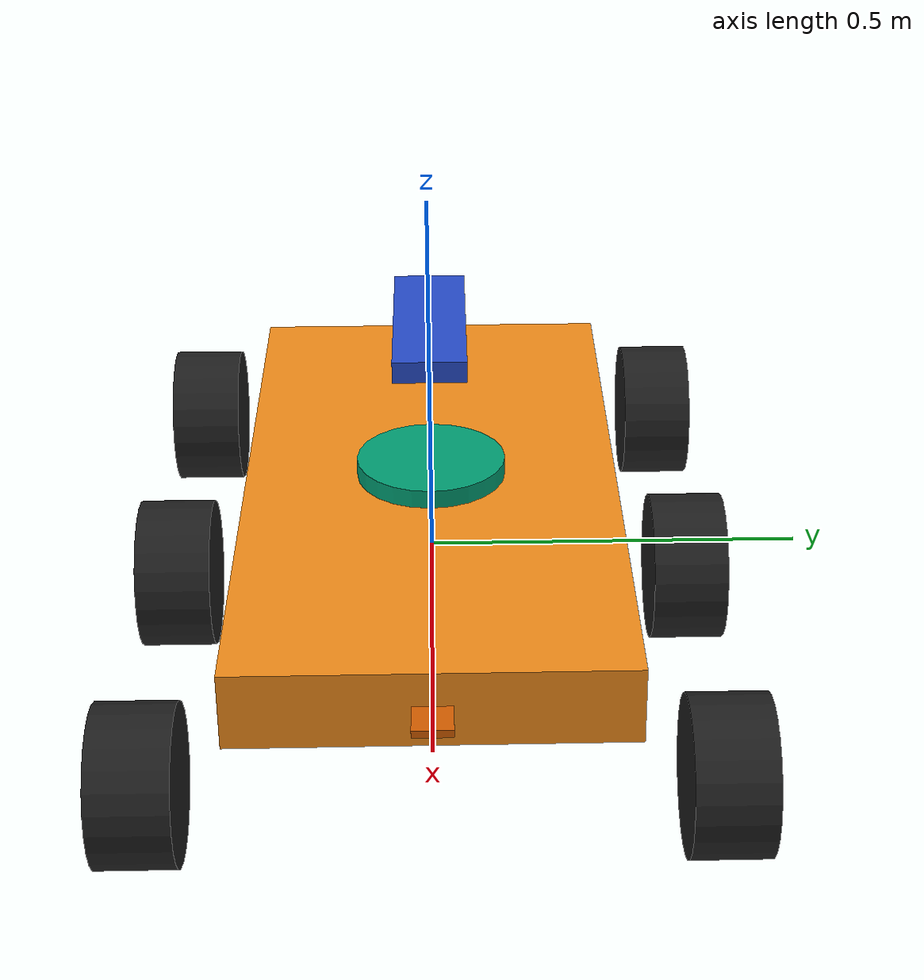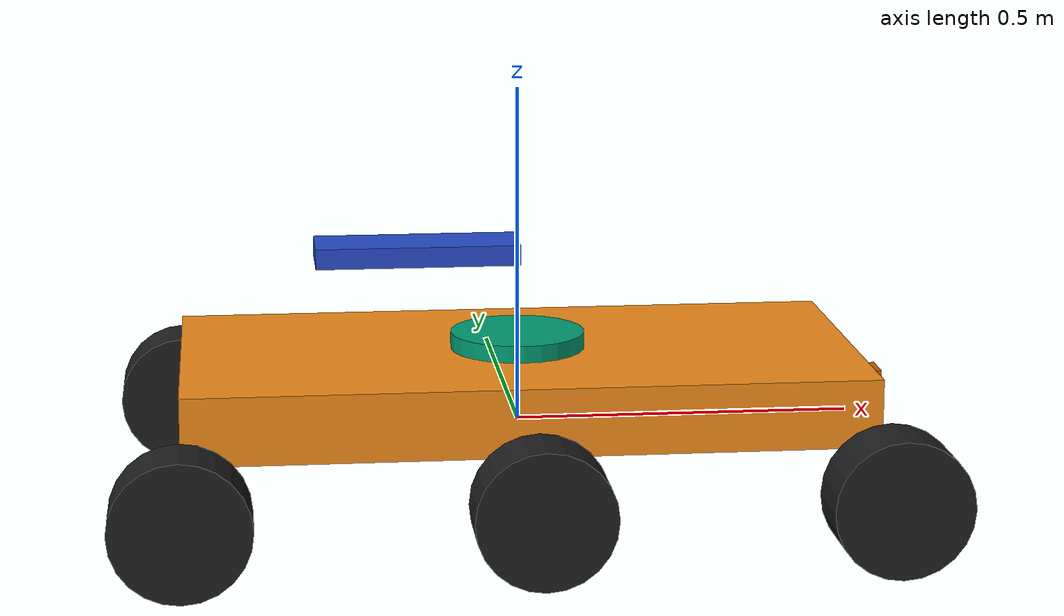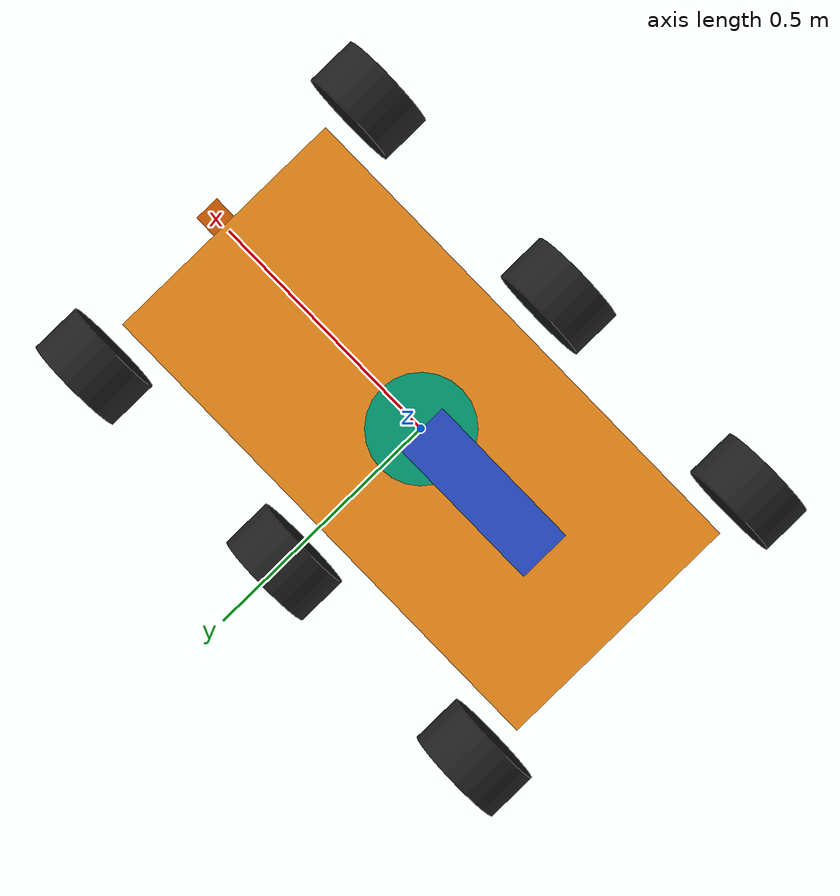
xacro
<?xml version="1.0"?>
<robot xmlns:xacro="http://www.ros.org/wiki/xacro" name="drives">

    <xacro:arg name="use_gazebo" default="false" />

    <xacro:arg name="use_fake_hardware" default="true" />
    <xacro:arg name="fake_sensor_commands" default="false" />

    <xacro:include filename="$(find cmr_drives_description)/urdf/drives_description.urdf.xacro" />
    <xacro:include filename="$(find cmr_drives_description)/gazebo/drives.materials.xacro" />
    <xacro:include filename="$(find cmr_drives_description)/ros2_control/drives.ros2_control.xacro" />
    <xacro:include filename="$(find cmr_drives_description)/ros2_control/sensor.ros2_control.xacro" />

    <xacro:drives />
    <xacro:drives_ros2_control name="drives"/>
    <xacro:astro_sensor name="test_astro_sensor" prefix="test_"/>

    <!-- camera -->

</robot>

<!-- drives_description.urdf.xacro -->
<robot xmlns:xacro="http://www.ros.org/wiki/xacro">

    <xacro:macro name="drives">

        <!-- Constants for robot dimensions -->
        <xacro:property name="PI" value="3.1415926535897931"/>
        <xacro:property name="base_mass" value="20" />
        <xacro:property name="lidar_mass" value="8" />
        <xacro:property name="camera_mass" value="8" />
        <xacro:property name="imu_mass" value="12" />
        <!-- arbitrary value for base mass -->
        <xacro:property name="base_width" value="1" />
        <xacro:property name="base_length" value="0.5" />
        <xacro:property name="base_height" value="0.1" />
        <xacro:property name="wheel_mass" value="5" />
        <!-- arbitrary value for wheel mass -->
        <xacro:property name="wheel_len" value="0.1" />
        <xacro:property name="wheel_radius" value="0.1" />
        <xacro:property name="z_offset" value="-${base_height/2}" />

        <xacro:property name="lidar_radius" value="0.1" />
        <xacro:property name="lidar_height" value="${base_height/2}" />
        <xacro:property name="cam_width" value="${base_length / 5.0}" />
        <xacro:property name="cam_height" value="${base_height / 10.0}" />
        <xacro:property name="cam_length" value="${base_length / 10.0}" />
        <xacro:property name="imu_width" value="${base_width}" />
        <xacro:property name="imu_height" value="${base_height / 2.0}" />
        <xacro:property name="imu_length" value="${base_length}" />
        <xacro:property name="astro_length" value="0.1" />
        <xacro:property name="astro_width" value="0.3" />
        <xacro:property name="astro_height" value="0.03" />
        <xacro:property name="astro_mass" value="${base_mass / 3}" />
        <!-- Space btw top of beam and the each joint -->

        <xacro:macro name="wheel" params="name x y">
            <joint name="${name}_joint" type="continuous">
                <parent link="base_link"/>
                <child link="${name}"/>
                <origin xyz="${x} ${y} ${z_offset}" rpy="0 0 0"/>
                <axis xyz="0 1 0"/>
                <dynamics damping="0.2"/>
            </joint>

            <link name="${name}">
                <collision>
                    <origin xyz="0 0 0" rpy="${PI/2} 0 0"/>
                    <geometry>
                        <cylinder length="${wheel_len}" radius="${wheel_radius}"/>
                    </geometry>
                </collision>

                <visual>
                    <origin xyz="0 0 0" rpy="${PI/2} 0 0"/>
                    <geometry>
                        <cylinder length="${wheel_len}" radius="${wheel_radius}"/>
                    </geometry>
                    <material name="black"/>
                </visual>

                <inertial>
                    <origin xyz="0 0 0" rpy="${PI/2} 0 0"/>
                    <mass value="${wheel_mass}"/>
                    <inertia ixx="${wheel_mass / 12.0 * (3*wheel_radius + wheel_len*wheel_len)}" ixy="0.0" ixz="0.0" iyy="${wheel_mass / 12.0 * wheel_radius*wheel_radius}" iyz="0.0" izz="${wheel_mass / 12.0 * wheel_radius*wheel_radius}"/>
                </inertial>
            </link>
            <gazebo reference="${name}">
                <surface>
                    <friction>
                        <ode>
                            <mu>1.5</mu>
                            <mu2>1.5</mu2>
                            <slip1>0</slip1>
                            <slip2>0</slip2>
                        </ode>
                    </friction>
                    <contact>
                        <ode>
                            <soft_cfm>0</soft_cfm>
                            <soft_erp>0.2</soft_erp>
                            <kp>1e+13</kp>
                            <kd>1</kd>
                            <max_vel>1</max_vel>
                            <min_depth>0.01</min_depth>
                        </ode>
                    </contact>
                </surface>
            </gazebo>
        </xacro:macro>

        <link name="base_footprint"/>

        <joint name="base_joint" type="fixed">
            <parent link="base_footprint"/>
            <child link="base_link" />
            <origin xyz="0 0 0.010" rpy="0 0 0"/>
        </joint>

        <!-- Base Link -->
        <link name="base_link">
            <collision>
                <origin xyz="0 0 0" rpy="0 0 0"/>
                <geometry>
                    <box size="${base_width} ${base_length} ${base_height}"/>
                </geometry>
            </collision>

            <visual>
                <origin xyz="0 0 ${base_height/2}" rpy="0 0 0"/>
                <geometry>
                    <box size="${base_width} ${base_length} ${base_height}"/>
                </geometry>
                <material name="orange"/>
            </visual>

            <inertial>
                <origin xyz="0 0 0" rpy="0 0 0"/>
                <mass value="${base_mass}"/>
                <inertia ixx="${base_mass / 12.0 * (base_length*base_length + base_height*base_height)}" ixy="0.0" ixz="0.0" iyy="${base_mass / 12.0 * (base_height*base_height + base_width*base_width)}" iyz="0.0" izz="${base_mass / 12.0 * (base_width*base_width + base_length*base_length)}"/>
            </inertial>
        </link>

        <!-- Lidar Link -->
        <link name="lidar_link">
            <inertial>
                <origin xyz="0 0 0" rpy="0 0 0"/>
                <mass value="${lidar_mass}"/>
                <inertia ixx="${lidar_mass / 12.0 * (3.0 * lidar_radius * lidar_radius + lidar_height * lidar_height)}" ixy="0" ixz="0" iyy="${lidar_mass / 12.0 * (3.0 * lidar_radius * lidar_radius + lidar_height * lidar_height)}" iyz="0" izz="${0.5 * lidar_mass * lidar_radius * lidar_radius}" />
            </inertial>

            <collision>
                <origin xyz="0 0 0" rpy="0 0 0"/>
                <geometry>
                    <cylinder radius="${lidar_radius}" length="${lidar_height}"/>
                </geometry>
            </collision>

            <visual>
                <origin xyz="0 0 0" rpy="0 0 0"/>
                <geometry>
                    <cylinder radius="${lidar_radius}" length="${lidar_height}"/>
                </geometry>
            </visual>
        </link>

        <joint name="lidar_joint" type="fixed">
            <parent link="base_link"/>
            <child link="lidar_link"/>
            <origin xyz="0 0 ${base_height}" rpy="0 0 0"/>
        </joint>

        <!-- IMU Link -->

        <joint name="imu_joint" type="fixed">
            <parent link="base_link"/>
            <child link="imu_link"/>
            <origin xyz="0 0 0"/>
        </joint>

        <link name="imu_link" />

        <!-- GPS Link -->
        <joint name="gps_joint" type="fixed">
            <parent link="base_link"/>
            <child link="gps_link"/>
            <origin xyz="0 0 0"/>
        </joint>

        <link name="gps_link" />

        <!-- Camera Link -->
        <link name="camera_link">
            <visual>
                <origin xyz="0 0 0" rpy="0 0 0"/>
                <geometry>
                    <box size="${cam_width} ${cam_length} ${cam_height}"/>
                </geometry>
            </visual>

            <collision>
                <origin xyz="0 0 0" rpy="0 0 0"/>
                <geometry>
                    <box size="${cam_width} ${cam_length} ${cam_height}"/>
                </geometry>
            </collision>

            <inertial>
                <origin xyz="0 0 0" rpy="0 0 0"/>
                <mass value="${camera_mass}"/>
                <inertia ixx="${camera_mass / 12.0 * (cam_height * cam_height + cam_length * cam_length)}" ixy="0" ixz="0" iyy="${camera_mass / 12.0 * (cam_height * cam_height + cam_width * cam_width)}" iyz="0" izz="${camera_mass / 12.0 * (cam_width * cam_width + cam_length * cam_length)}" />
            </inertial>
        </link>

        <joint name="camera_joint" type="fixed">
            <parent link="base_link"/>
            <child link="camera_link"/>
            <origin xyz="${base_width / 2} 0 ${base_height / 2}" rpy="0 0 0"/>
        </joint>

        <!-- Wheels -->
        <xacro:wheel name="left_front" x="${base_width/2}" y="-${base_length/2 + wheel_len}" />
        <xacro:wheel name="left_mid" x="0" y="-${base_length/2 + wheel_len}" />
        <xacro:wheel name="left_back" x="-${base_width/2}" y="-${base_length/2 + wheel_len}" />

        <xacro:wheel name="right_front" x="${base_width/2}" y="${base_length/2 + wheel_len}" />
        <xacro:wheel name="right_mid" x="0" y="${base_length/2 + wheel_len}" />
        <xacro:wheel name="right_back" x="-${base_width/2}" y="${base_length/2 + wheel_len}" />

        <!-- Test astro link -->
        <link name="test_astro">
            <collision>
                <origin xyz="0 0 0" rpy="0 0 0"/>
                <geometry>
                    <box size="${astro_width} ${astro_length} ${astro_height}"/>
                </geometry>
            </collision>

            <visual>
                <origin xyz="0 0 0" rpy="0 0 0"/>
                <geometry>
                    <box size="${astro_width} ${astro_length} ${astro_height}"/>
                </geometry>
                <material name="blue"/>
            </visual>

            <inertial>
                <origin xyz="0 0 0" rpy="0 0 0"/>
                <mass value="${astro_mass}"/>
                <inertia ixx="${astro_mass / 12.0 * (astro_length*astro_length + astro_height*astro_height)}" ixy="0.0" ixz="0.0"
                         iyy="${astro_mass / 12.0 * astro_width*astro_width}" iyz="0.0"
                         izz="${astro_mass / 12.0 * (astro_width*astro_width + astro_length*astro_length)}"/>
            </inertial>
        </link>

        <joint name="test_astro_joint" type="continuous">
            <parent link="base_link"/>
            <child link="test_astro"/>
            <origin xyz="${-astro_width / 2.0} 0 ${base_height * 2 + lidar_height}" rpy="0 0 0"/>
            <axis xyz="0 0 1"/>
            <dynamics damping="0.2"/>
        </joint>

    </xacro:macro>

    <gazebo reference="imu_link">
        <gravity>true</gravity>
        <sensor name="imu_sensor" type="imu">
            <plugin filename="libgazebo_ros_imu_sensor.so" name="imu_plugin">
                <ros>
                    <namespace>/rover</namespace>
                    <remapping>~/out:=imu</remapping>
                </ros>
                <initial_orientation_as_reference>false</initial_orientation_as_reference>
            </plugin>
            <always_on>true</always_on>
            <update_rate>2</update_rate>
            <visualize>true</visualize>
            <imu>
                <orientation>
                    <x>
                        <noise type="gaussian">
                            <mean>0.0</mean>
                            <stddev>2e-3</stddev>
                        </noise>
                    </x>
                    <y>
                        <noise type="gaussian">
                            <mean>0.0</mean>
                            <stddev>2e-3</stddev>
                        </noise>
                    </y>
                    <z>
                        <noise type="gaussian">
                            <mean>0.0</mean>
                            <stddev>2e-3</stddev>
                        </noise>
                    </z>
                </orientation>
                <angular_velocity>
                    <x>
                        <noise type="gaussian">
                            <mean>0.0</mean>
                            <stddev>2e-4</stddev>
                        </noise>
                    </x>
                    <y>
                        <noise type="gaussian">
                            <mean>0.0</mean>
                            <stddev>2e-4</stddev>
                        </noise>
                    </y>
                    <z>
                        <noise type="gaussian">
                            <mean>0.0</mean>
                            <stddev>2e-4</stddev>
                        </noise>
                    </z>
                </angular_velocity>
                <linear_acceleration>
                    <x>
                        <noise type="gaussian">
                            <mean>0.0</mean>
                            <stddev>1.7e-2</stddev>
                        </noise>
                    </x>
                    <y>
                        <noise type="gaussian">
                            <mean>0.0</mean>
                            <stddev>1.7e-2</stddev>
                        </noise>
                    </y>
                    <z>
                        <noise type="gaussian">
                            <mean>0.0</mean>
                            <stddev>1.7e-2</stddev>
                        </noise>
                    </z>
                </linear_acceleration>
            </imu>
        </sensor>
    </gazebo>
    <gazebo>
        <plugin name='diff_drive' filename='libgazebo_ros_diff_drive.so'>
            <ros>
                <namespace>/</namespace>
            </ros>

            <!-- wheels -->
            <num_wheel_pairs>3</num_wheel_pairs>

            <left_joint>left_front_joint</left_joint>
            <left_joint>left_mid_joint</left_joint>
            <left_joint>left_back_joint</left_joint>

            <right_joint>right_front_joint</right_joint>
            <right_joint>right_mid_joint</right_joint>
            <right_joint>right_back_joint</right_joint>

            <!-- kinematics -->
            <wheel_separation>0.5</wheel_separation>
            <wheel_diameter>0.2</wheel_diameter>

            <!-- limits -->
            <max_wheel_torque>500</max_wheel_torque>
            <max_wheel_acceleration>10.0</max_wheel_acceleration>

            <!-- output -->
            <update_rate>30</update_rate>
            <publish_odom>true</publish_odom>
            <publish_odom_tf>true</publish_odom_tf>
            <publish_wheel_tf>false</publish_wheel_tf>
            <odom_topic>/odom</odom_topic>
            <topic>/cmd_vel</topic>

            <source_frame>map</source_frame>
            <odometry_frame>odom</odometry_frame>
            <robot_base_frame>base_footprint</robot_base_frame>
        </plugin>
    </gazebo>

    <gazebo reference="lidar_link">
        <sensor name="lidar" type="ray">
            <always_on>true</always_on>
            <visualize>true</visualize>
            <update_rate>2</update_rate>
            <ray>
                <scan>
                    <horizontal>
                        <samples>360</samples>
                        <resolution>1.000000</resolution>
                        <min_angle>0.000000</min_angle>
                        <max_angle>6.280000</max_angle>
                    </horizontal>
                </scan>
                <range>
                    <min>0.150000</min>
                    <max>100.0</max>
                    <resolution>0.015000</resolution>
                </range>
                <noise>
                    <type>gaussian</type>
                    <mean>0.0</mean>
                    <stddev>0.01</stddev>
                </noise>
            </ray>
            <plugin name="scan" filename="libgazebo_ros_ray_sensor.so">
                <ros>
                    <remapping>~/out:=scan</remapping>
                </ros>
                <output_type>sensor_msgs/LaserScan</output_type>
                <frame_name>lidar_link</frame_name>
            </plugin>
        </sensor>
    </gazebo>

    <gazebo reference="camera_link">
        <sensor type="camera" name="camera1">
            <update_rate>2</update_rate>
            <camera name="head">
                <horizontal_fov>1.5127496682368</horizontal_fov>
                <verical_fov>1.6500906166776</verical_fov>
                <image>
                    <width>1280</width>
                    <height>720</height>
                    <format>R8G8B8</format>
                </image>
                <clip>
                    <near>0.02</near>
                    <far>300</far>
                </clip>
                <noise>
                    <type>gaussian</type>
                    <!-- Noise is sampled independently per pixel on each frame.
               That pixel's noise value is added to each of its color
               channels, which at that point lie in the range [0,1]. -->
                    <mean>0.0</mean>
                    <stddev>0.007</stddev>
                </noise>
            </camera>
            <plugin name="camera_controller" filename="libgazebo_ros_camera.so">
                <alwaysOn>true</alwaysOn>
                <updateRate>0.0</updateRate>
                <cameraName>drives/camera1</cameraName>
                <imageTopicName>image_raw</imageTopicName>
                <cameraInfoTopicName>camera_info</cameraInfoTopicName>
                <frameName>camera_link</frameName>
                <hackBaseline>0.07</hackBaseline>
                <distortionK1>0.0</distortionK1>
                <distortionK2>0.0</distortionK2>
                <distortionK3>0.0</distortionK3>
                <distortionT1>0.0</distortionT1>
                <distortionT2>0.0</distortionT2>
            </plugin>
        </sensor>
    </gazebo>

    <gazebo reference="gps_link">
        <sensor name="rover_gps" type="gps">
            <always_on>true</always_on>
            <update_rate>0.5</update_rate>
            <gps>
                <position_sensing>
                    <horizontal>
                        <noise type="gaussian">
                            <mean>0.0</mean>
                            <stddev>1e-2</stddev>
                        </noise>
                    </horizontal>
                    <vertical>
                        <noise type="gaussian">
                            <mean>0.0</mean>
                            <stddev>1</stddev>
                        </noise>
                    </vertical>
                </position_sensing>
            </gps>
            <plugin name="rover_gps" filename="libgazebo_ros_gps_sensor.so">
                <ros>
                    <remapping>~/out:=gps/fix</remapping>
                </ros>
            </plugin>
        </sensor>
    </gazebo>
</robot>
